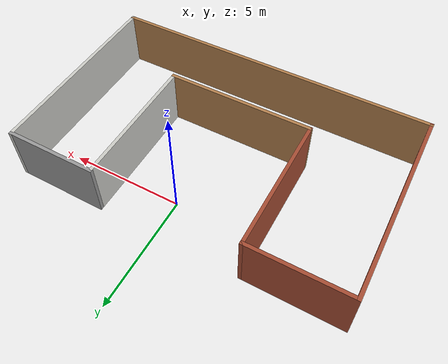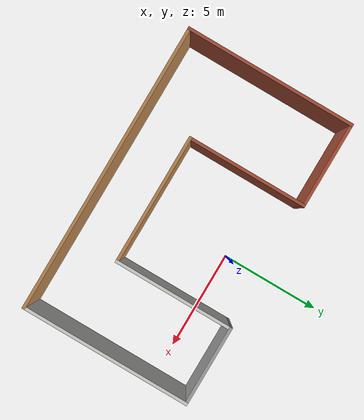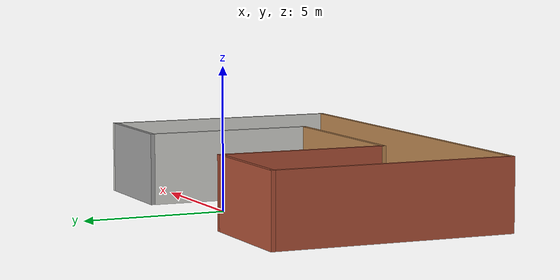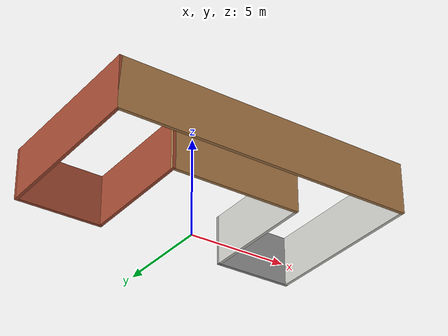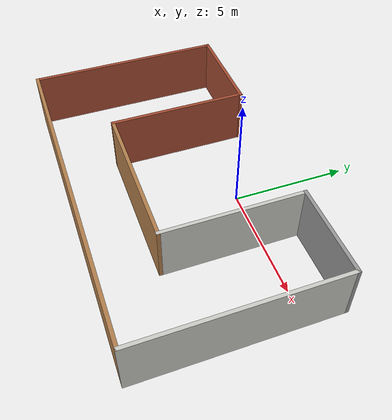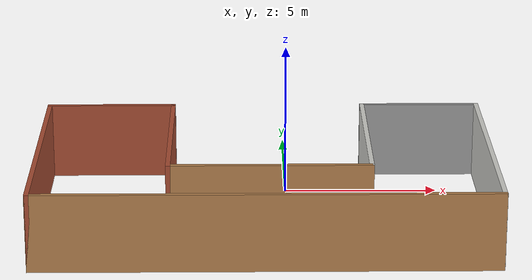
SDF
<?xml version='1.0'?>
<sdf version='1.6'>
  <model name='ushape'>
    <pose frame=''>-0.721279 -2.55322 0 0 -0 0</pose>
    <link name='Wall_2'>
      <collision name='Wall_2_Collision'>
        <geometry>
          <box>
            <size>8.5 0.15 2.5</size>
          </box>
        </geometry>
        <pose frame=''>0 0 1.25 0 -0 0</pose>
      </collision>
      <visual name='Wall_2_Visual'>
        <pose frame=''>0 0 1.25 0 -0 0</pose>
        <geometry>
          <box>
            <size>8.5 0.15 2.5</size>
          </box>
        </geometry>
        <material>
          <script>
            <uri>file://media/materials/scripts/gazebo.material</uri>
            <name>Gazebo/Bricks</name>
          </script>
          <ambient>1 1 1 1</ambient>
        </material>
        <meta>
          <layer>0</layer>
        </meta>
      </visual>
      <pose frame=''>-7.175 0 0 0 0 -1.5708</pose>
    </link>
    <link name='Wall_3'>
      <collision name='Wall_3_Collision'>
        <geometry>
          <box>
            <size>14.5 0.15 2.5</size>
          </box>
        </geometry>
        <pose frame=''>0 0 1.25 0 -0 0</pose>
      </collision>
      <visual name='Wall_3_Visual'>
        <pose frame=''>0 0 1.25 0 -0 0</pose>
        <geometry>
          <box>
            <size>14.5 0.15 2.5</size>
          </box>
        </geometry>
        <material>
          <script>
            <uri>file://media/materials/scripts/gazebo.material</uri>
            <name>Gazebo/Wood</name>
          </script>
          <ambient>1 1 1 1</ambient>
        </material>
        <meta>
          <layer>0</layer>
        </meta>
      </visual>
      <pose frame=''>0 -4.175 0 0 -0 0</pose>
    </link>
    <link name='Wall_4'>
      <collision name='Wall_4_Collision'>
        <geometry>
          <box>
            <size>8.5 0.15 2.5</size>
          </box>
        </geometry>
        <pose frame=''>0 0 1.25 0 -0 0</pose>
      </collision>
      <visual name='Wall_4_Visual'>
        <pose frame=''>0 0 1.25 0 -0 0</pose>
        <geometry>
          <box>
            <size>8.5 0.15 2.5</size>
          </box>
        </geometry>
        <material>
          <script>
            <uri>file://media/materials/scripts/gazebo.material</uri>
            <name>Gazebo/CeilingTiled</name>
          </script>
          <ambient>1 1 1 1</ambient>
        </material>
        <meta>
          <layer>0</layer>
        </meta>
      </visual>
      <pose frame=''>7.175 0 0 0 -0 1.5708</pose>
    </link>
    <link name='Wall_5'>
      <collision name='Wall_5_Collision'>
        <geometry>
          <box>
            <size>4 0.15 2.5</size>
          </box>
        </geometry>
        <pose frame=''>0 0 1.25 0 -0 0</pose>
      </collision>
      <visual name='Wall_5_Visual'>
        <pose frame=''>0 0 1.25 0 -0 0</pose>
        <geometry>
          <box>
            <size>4 0.15 2.5</size>
          </box>
        </geometry>
        <material>
          <script>
            <uri>file://media/materials/scripts/gazebo.material</uri>
            <name>Gazebo/Grey</name>
          </script>
          <ambient>1 1 1 1</ambient>
        </material>
        <meta>
          <layer>0</layer>
        </meta>
      </visual>
      <pose frame=''>5.25 4.175 0 0 -0 3.14159</pose>
    </link>
    <link name='Wall_6'>
      <collision name='Wall_6_Collision'>
        <geometry>
          <box>
            <size>6 0.15 2.5</size>
          </box>
        </geometry>
        <pose frame=''>0 0 1.25 0 -0 0</pose>
      </collision>
      <visual name='Wall_6_Visual'>
        <pose frame=''>0 0 1.25 0 -0 0</pose>
        <geometry>
          <box>
            <size>6 0.15 2.5</size>
          </box>
        </geometry>
        <material>
          <script>
            <uri>file://media/materials/scripts/gazebo.material</uri>
            <name>Gazebo/CeilingTiled</name>
          </script>
          <ambient>1 1 1 1</ambient>
        </material>
        <meta>
          <layer>0</layer>
        </meta>
      </visual>
      <pose frame=''>3.325 1.25 0 0 0 -1.5708</pose>
    </link>
    <link name='Wall_7'>
      <collision name='Wall_7_Collision'>
        <geometry>
          <box>
            <size>6.5 0.15 2.5</size>
          </box>
        </geometry>
        <pose frame=''>0 0 1.25 0 -0 0</pose>
      </collision>
      <visual name='Wall_7_Visual'>
        <pose frame=''>0 0 1.25 0 -0 0</pose>
        <geometry>
          <box>
            <size>6.5 0.15 2.5</size>
          </box>
        </geometry>
        <material>
          <script>
            <uri>file://media/materials/scripts/gazebo.material</uri>
            <name>Gazebo/Wood</name>
          </script>
          <ambient>1 1 1 1</ambient>
        </material>
        <meta>
          <layer>0</layer>
        </meta>
      </visual>
      <pose frame=''>0.15 -1.675 0 0 -0 3.14159</pose>
    </link>
    <link name='Wall_8'>
      <collision name='Wall_8_Collision'>
        <geometry>
          <box>
            <size>6 0.15 2.5</size>
          </box>
        </geometry>
        <pose frame=''>0 0 1.25 0 -0 0</pose>
      </collision>
      <visual name='Wall_8_Visual'>
        <pose frame=''>0 0 1.25 0 -0 0</pose>
        <geometry>
          <box>
            <size>6 0.15 2.5</size>
          </box>
        </geometry>
        <material>
          <script>
            <uri>file://media/materials/scripts/gazebo.material</uri>
            <name>Gazebo/Bricks</name>
          </script>
          <ambient>1 1 1 1</ambient>
        </material>
        <meta>
          <layer>0</layer>
        </meta>
      </visual>
      <pose frame=''>-3.025 1.25 0 0 -0 1.5708</pose>
    </link>
    <link name='Wall_9'>
      <collision name='Wall_9_Collision'>
        <geometry>
          <box>
            <size>4.3 0.15 2.5</size>
          </box>
        </geometry>
        <pose frame=''>0 0 1.25 0 -0 0</pose>
      </collision>
      <visual name='Wall_9_Visual'>
        <pose frame=''>0 0 1.25 0 -0 0</pose>
        <geometry>
          <box>
            <size>4.3 0.15 2.5</size>
          </box>
        </geometry>
        <material>
          <script>
            <uri>file://media/materials/scripts/gazebo.material</uri>
            <name>Gazebo/Bricks</name>
          </script>
          <ambient>1 1 1 1</ambient>
        </material>
        <meta>
          <layer>0</layer>
        </meta>
      </visual>
      <pose frame=''>-5.1 4.175 0 0 -0 3.14159</pose>
    </link>
    <static>1</static>
  </model>
</sdf>
